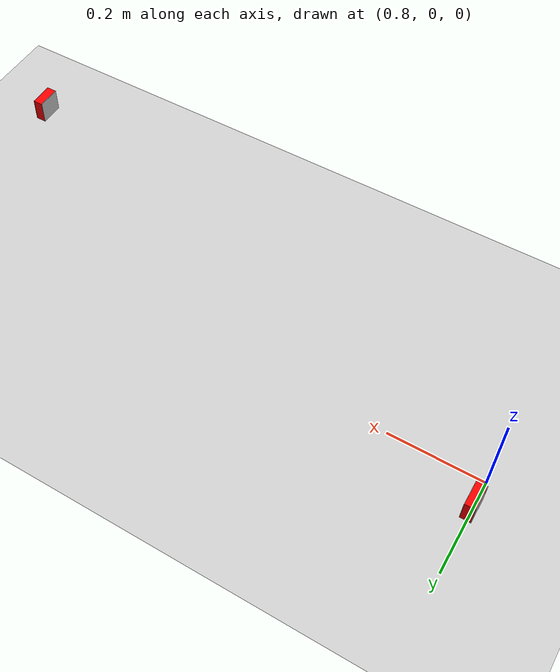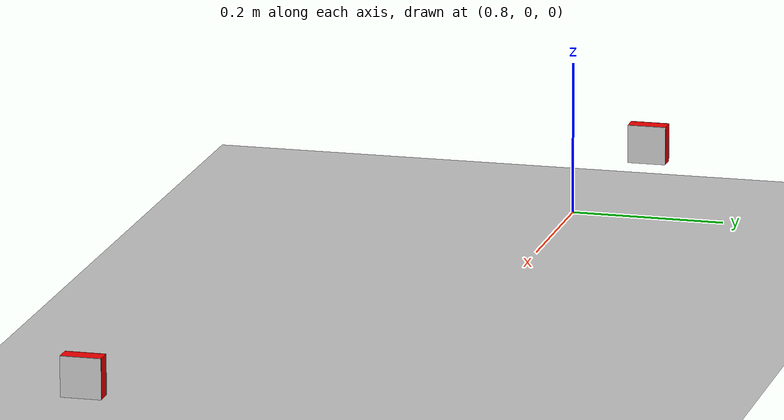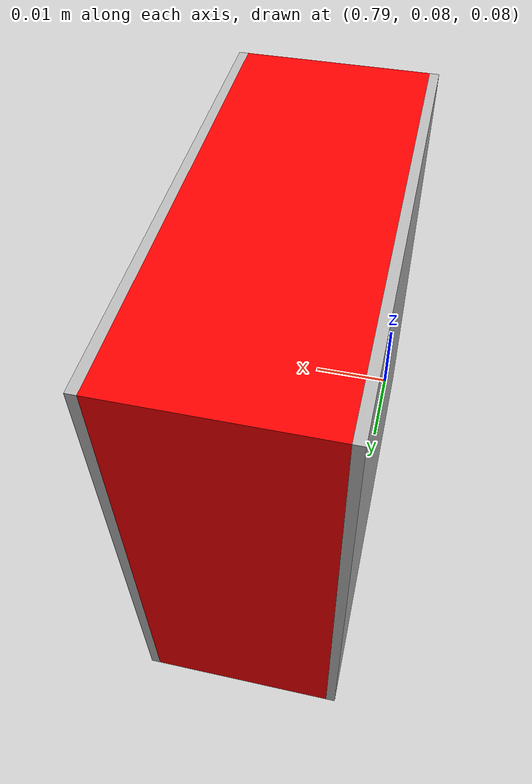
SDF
<?xml version="1.0" ?>
<sdf version="1.6">
  <world name="youbot_task">

    <!-- Gravidade e física -->
    <physics type="ode">
      <max_step_size>0.001</max_step_size>
      <real_time_factor>1.0</real_time_factor>
    </physics>

    <!-- Luz padrão -->
    <include>
      <uri>model://sun</uri>
    </include>

    <!-- Chão -->
    <include>
      <uri>model://ground_plane</uri>
    </include>

    <!-- Bloco a ser pego -->
    <include>
      <uri>model://block_test</uri>
      <name>block_test</name>
      <pose>0.8 0.1 0.1 0 0 0</pose>
    </include>

    <!-- Bloco marcador -->
    <include>
      <uri>model://block_marker</uri>
      <name>block_marker</name>
      <pose>2.0 -0.3 0.1 0 0 0</pose>
    </include>

    <!-- Plugin para fake grasp -->
    <plugin name="gazebo_ros_link_attacher"
            filename="libgazebo_ros_link_attacher.so"/>

  </world>
</sdf>

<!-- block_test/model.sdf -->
<sdf version="1.6">
  <model name="block_test">
    <static>false</static>

    <link name="block_link">
      <pose>0 0 0 0 0 0</pose>

      <collision name="block_collision">
        <geometry>
          <box>
            <size>0.02 0.05 0.05</size>
          </box>
        </geometry>
      </collision>

      <visual name="block_visual">
        <geometry>
          <box>
            <size>0.02 0.05 0.05</size>
          </box>
        </geometry>

        <material>
          <ambient>1 0 0 1</ambient>
          <diffuse>1 0 0 1</diffuse>
        </material>
      </visual>

      <!--PLACA DA TAG NA FACE 5×5 -->
      <visual name="tag_plate">
        <!-- Posição: metade do bloco (0.01) + metade da placa (0.0005) -->
        <pose>0.0105 0 0 0 0 0</pose>

        <geometry>
          <box>
            <!-- placa fina colada -->
            <size>0.001 0.05 0.05</size>
          </box>
        </geometry>

        <material>
          <lighting>false</lighting>
            <script>
              <uri>model://block_test/materials/scripts</uri>
              <uri>model://block_test/materials/textures</uri>
              <name>BlockTest/Diffuse</name>
          </script>
        </material>
      </visual>

      <visual name="tag_plate_2">
        <!-- tag em outra face -->
        <pose>-0.0105 0 0 0 0 0</pose>

        <geometry>
          <box>
            <!-- placa fina colada -->
            <size>0.001 0.05 0.05</size>
          </box>
        </geometry>

        <material>
          <lighting>false</lighting>
            <script>
              <uri>model://block_test/materials/scripts</uri>
              <uri>model://block_test/materials/textures</uri>
              <name>BlockTest/Diffuse</name>
          </script>
        </material>
      </visual>

    </link>

  </model>
</sdf>

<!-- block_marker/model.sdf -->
<sdf version="1.6">
  <model name="block_marker">
    <static>false</static>

    <link name="block_link">
      <pose>0 0 0 0 0 0</pose>

      <collision name="block_collision">
        <geometry>
          <box>
            <size>0.02 0.05 0.05</size>
          </box>
        </geometry>
      </collision>

      <visual name="block_visual">
        <geometry>
          <box>
            <size>0.02 0.05 0.05</size>
          </box>
        </geometry>

        <material>
          <ambient>1 0 0 1</ambient>
          <diffuse>1 0 0 1</diffuse>
        </material>
      </visual>

      <!--PLACA DA TAG NA FACE 5×5 -->
      <visual name="tag_plate">
        <!-- Posição: metade do bloco (0.01) + metade da placa (0.0005) -->
        <pose>0.0105 0 0 0 0 0</pose>

        <geometry>
          <box>
            <!-- placa fina colada -->
            <size>0.001 0.05 0.05</size>
          </box>
        </geometry>

        <material>
          <lighting>false</lighting>
            <script>
              <uri>model://block_marker/materials/scripts</uri>
              <uri>model://block_marker/materials/textures</uri>
              <name>BlockMarker/Diffuse</name>
          </script>
        </material>
      </visual>

      <visual name="tag_plate_2">
        <!-- tag em outra face -->
        <pose>-0.0105 0 0 0 0 0</pose>

        <geometry>
          <box>
            <!-- placa fina colada -->
            <size>0.001 0.05 0.05</size>
          </box>
        </geometry>

        <material>
          <lighting>false</lighting>
            <script>
              <uri>model://block_marker/materials/scripts</uri>
              <uri>model://block_marker/materials/textures</uri>
              <name>BlockMarker/Diffuse</name>
          </script>
        </material>
      </visual>

    </link>

  </model>
</sdf>
